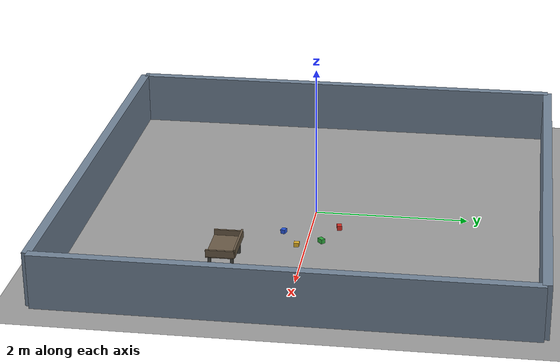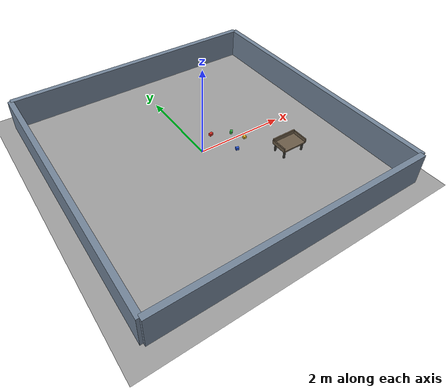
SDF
<?xml version="1.0" ?>
<sdf version="1.7">
  <world name="simple_course">
    <light name="sun" type="directional">
      <cast_shadows>0</cast_shadows>
      <pose>0 0 8 0 0 0</pose>
      <diffuse>0.8 0.8 0.8 1</diffuse>
      <specular>0.05 0.05 0.05 1</specular>
      <direction>-0.4 0.2 -0.9</direction>
    </light>

    <model name="ground_plane">
      <static>1</static>
      <link name="link">
        <collision name="collision">
          <geometry>
            <plane>
              <normal>0 0 1</normal>
              <size>12 12</size>
            </plane>
          </geometry>
          <surface>
            <friction>
              <ode>
                <mu>1.0</mu>
                <mu2>1.0</mu2>
              </ode>
            </friction>
          </surface>
        </collision>
        <visual name="visual">
          <cast_shadows>0</cast_shadows>
          <geometry>
            <plane>
              <normal>0 0 1</normal>
              <size>12 12</size>
            </plane>
          </geometry>
          <material>
            <ambient>0.55 0.55 0.55 1</ambient>
            <diffuse>0.62 0.62 0.62 1</diffuse>
          </material>
        </visual>
      </link>
    </model>

    <model name="wall_north">
      <static>1</static>
      <pose>0 3.0 0.35 0 0 0</pose>
      <link name="link">
        <collision name="collision"><geometry><box><size>6.0 0.12 0.7</size></box></geometry></collision>
        <visual name="visual"><geometry><box><size>6.0 0.12 0.7</size></box></geometry><material><diffuse>0.45 0.52 0.6 1</diffuse></material></visual>
      </link>
    </model>

    <model name="wall_south">
      <static>1</static>
      <pose>0 -3.0 0.35 0 0 0</pose>
      <link name="link">
        <collision name="collision"><geometry><box><size>6.0 0.12 0.7</size></box></geometry></collision>
        <visual name="visual"><geometry><box><size>6.0 0.12 0.7</size></box></geometry><material><diffuse>0.45 0.52 0.6 1</diffuse></material></visual>
      </link>
    </model>

    <model name="wall_east">
      <static>1</static>
      <pose>3.0 0 0.35 0 0 0</pose>
      <link name="link">
        <collision name="collision"><geometry><box><size>0.12 6.0 0.7</size></box></geometry></collision>
        <visual name="visual"><geometry><box><size>0.12 6.0 0.7</size></box></geometry><material><diffuse>0.45 0.52 0.6 1</diffuse></material></visual>
      </link>
    </model>

    <model name="wall_west">
      <static>1</static>
      <pose>-3.0 0 0.35 0 0 0</pose>
      <link name="link">
        <collision name="collision"><geometry><box><size>0.12 6.0 0.7</size></box></geometry></collision>
        <visual name="visual"><geometry><box><size>0.12 6.0 0.7</size></box></geometry><material><diffuse>0.45 0.52 0.6 1</diffuse></material></visual>
      </link>
    </model>

    <model name="collection_rack">
      <static>1</static>
      <pose>1.55 -0.95 0 0 0 0</pose>
      <link name="shelf_panel">
        <pose>0 0 0.20 0 0 0</pose>
        <collision name="collision"><geometry><box><size>0.58 0.36 0.035</size></box></geometry></collision>
        <visual name="visual"><geometry><box><size>0.58 0.36 0.035</size></box></geometry><material><diffuse>0.42 0.36 0.28 1</diffuse></material></visual>
      </link>
      <link name="back_lip">
        <pose>0 0.18 0.255 0 0 0</pose>
        <collision name="collision"><geometry><box><size>0.58 0.025 0.11</size></box></geometry></collision>
        <visual name="visual"><geometry><box><size>0.58 0.025 0.11</size></box></geometry><material><diffuse>0.42 0.36 0.28 1</diffuse></material></visual>
      </link>
      <link name="left_lip">
        <pose>0.29 0 0.245 0 0 0</pose>
        <collision name="collision"><geometry><box><size>0.025 0.36 0.09</size></box></geometry></collision>
        <visual name="visual"><geometry><box><size>0.025 0.36 0.09</size></box></geometry><material><diffuse>0.42 0.36 0.28 1</diffuse></material></visual>
      </link>
      <link name="right_lip">
        <pose>-0.29 0 0.245 0 0 0</pose>
        <collision name="collision"><geometry><box><size>0.025 0.36 0.09</size></box></geometry></collision>
        <visual name="visual"><geometry><box><size>0.025 0.36 0.09</size></box></geometry><material><diffuse>0.42 0.36 0.28 1</diffuse></material></visual>
      </link>
      <link name="leg_fl">
        <pose>0.24 0.14 0.09 0 0 0</pose>
        <collision name="collision"><geometry><box><size>0.035 0.035 0.18</size></box></geometry></collision>
        <visual name="visual"><geometry><box><size>0.035 0.035 0.18</size></box></geometry><material><diffuse>0.28 0.28 0.26 1</diffuse></material></visual>
      </link>
      <link name="leg_fr">
        <pose>0.24 -0.14 0.09 0 0 0</pose>
        <collision name="collision"><geometry><box><size>0.035 0.035 0.18</size></box></geometry></collision>
        <visual name="visual"><geometry><box><size>0.035 0.035 0.18</size></box></geometry><material><diffuse>0.28 0.28 0.26 1</diffuse></material></visual>
      </link>
      <link name="leg_bl">
        <pose>-0.24 0.14 0.09 0 0 0</pose>
        <collision name="collision"><geometry><box><size>0.035 0.035 0.18</size></box></geometry></collision>
        <visual name="visual"><geometry><box><size>0.035 0.035 0.18</size></box></geometry><material><diffuse>0.28 0.28 0.26 1</diffuse></material></visual>
      </link>
      <link name="leg_br">
        <pose>-0.24 -0.14 0.09 0 0 0</pose>
        <collision name="collision"><geometry><box><size>0.035 0.035 0.18</size></box></geometry></collision>
        <visual name="visual"><geometry><box><size>0.035 0.035 0.18</size></box></geometry><material><diffuse>0.28 0.28 0.26 1</diffuse></material></visual>
      </link>
    </model>

    <model name="small_item_red">
      <static>0</static>
      <pose>0.46 0.36 0.03 0 0 0.2</pose>
      <link name="link">
        <inertial><mass>0.018</mass><inertia><ixx>0.000007</ixx><iyy>0.000007</iyy><izz>0.000007</izz><ixy>0</ixy><ixz>0</ixz><iyz>0</iyz></inertia></inertial>
        <collision name="collision"><geometry><box><size>0.08 0.06 0.06</size></box></geometry><surface><friction><ode><mu>4.0</mu><mu2>4.0</mu2></ode></friction><contact><ode><kp>1000000</kp><kd>20</kd><max_vel>0.05</max_vel><min_depth>0.002</min_depth></ode></contact></surface></collision>
        <visual name="visual"><geometry><box><size>0.08 0.06 0.06</size></box></geometry><material><diffuse>0.86 0.18 0.14 1</diffuse></material></visual>
      </link>
    </model>

    <model name="small_item_blue">
      <static>0</static>
      <pose>0.66 -0.34 0.0275 0 0 -0.35</pose>
      <link name="link">
        <inertial><mass>0.016</mass><inertia><ixx>0.000006</ixx><iyy>0.000006</iyy><izz>0.000006</izz><ixy>0</ixy><ixz>0</ixz><iyz>0</iyz></inertia></inertial>
        <collision name="collision"><geometry><box><size>0.07 0.06 0.055</size></box></geometry><surface><friction><ode><mu>4.0</mu><mu2>4.0</mu2></ode></friction><contact><ode><kp>1000000</kp><kd>20</kd><max_vel>0.05</max_vel><min_depth>0.002</min_depth></ode></contact></surface></collision>
        <visual name="visual"><geometry><box><size>0.07 0.06 0.055</size></box></geometry><material><diffuse>0.15 0.34 0.86 1</diffuse></material></visual>
      </link>
    </model>

    <model name="small_item_green">
      <static>0</static>
      <pose>0.88 0.18 0.03 0 0 0.75</pose>
      <link name="link">
        <inertial><mass>0.018</mass><inertia><ixx>0.000007</ixx><iyy>0.000007</iyy><izz>0.000007</izz><ixy>0</ixy><ixz>0</ixz><iyz>0</iyz></inertia></inertial>
        <collision name="collision"><geometry><box><size>0.08 0.055 0.06</size></box></geometry><surface><friction><ode><mu>4.0</mu><mu2>4.0</mu2></ode></friction><contact><ode><kp>1000000</kp><kd>20</kd><max_vel>0.05</max_vel><min_depth>0.002</min_depth></ode></contact></surface></collision>
        <visual name="visual"><geometry><box><size>0.08 0.055 0.06</size></box></geometry><material><diffuse>0.18 0.66 0.24 1</diffuse></material></visual>
      </link>
    </model>

    <model name="small_item_yellow">
      <static>0</static>
      <pose>1.02 -0.12 0.0275 0 0 0.0</pose>
      <link name="link">
        <inertial><mass>0.015</mass><inertia><ixx>0.000005</ixx><iyy>0.000005</iyy><izz>0.000005</izz><ixy>0</ixy><ixz>0</ixz><iyz>0</iyz></inertia></inertial>
        <collision name="collision"><geometry><box><size>0.065 0.065 0.055</size></box></geometry><surface><friction><ode><mu>4.0</mu><mu2>4.0</mu2></ode></friction><contact><ode><kp>1000000</kp><kd>20</kd><max_vel>0.05</max_vel><min_depth>0.002</min_depth></ode></contact></surface></collision>
        <visual name="visual"><geometry><box><size>0.065 0.065 0.055</size></box></geometry><material><diffuse>0.92 0.72 0.16 1</diffuse></material></visual>
      </link>
    </model>

    <gravity>0 0 -9.81</gravity>
    <physics type="ode">
      <max_step_size>0.002</max_step_size>
      <real_time_factor>1</real_time_factor>
      <real_time_update_rate>500</real_time_update_rate>
    </physics>

    <scene>
      <ambient>0.65 0.65 0.65 1</ambient>
      <background>0.72 0.74 0.76 1</background>
      <shadows>0</shadows>
    </scene>
  </world>
</sdf>
